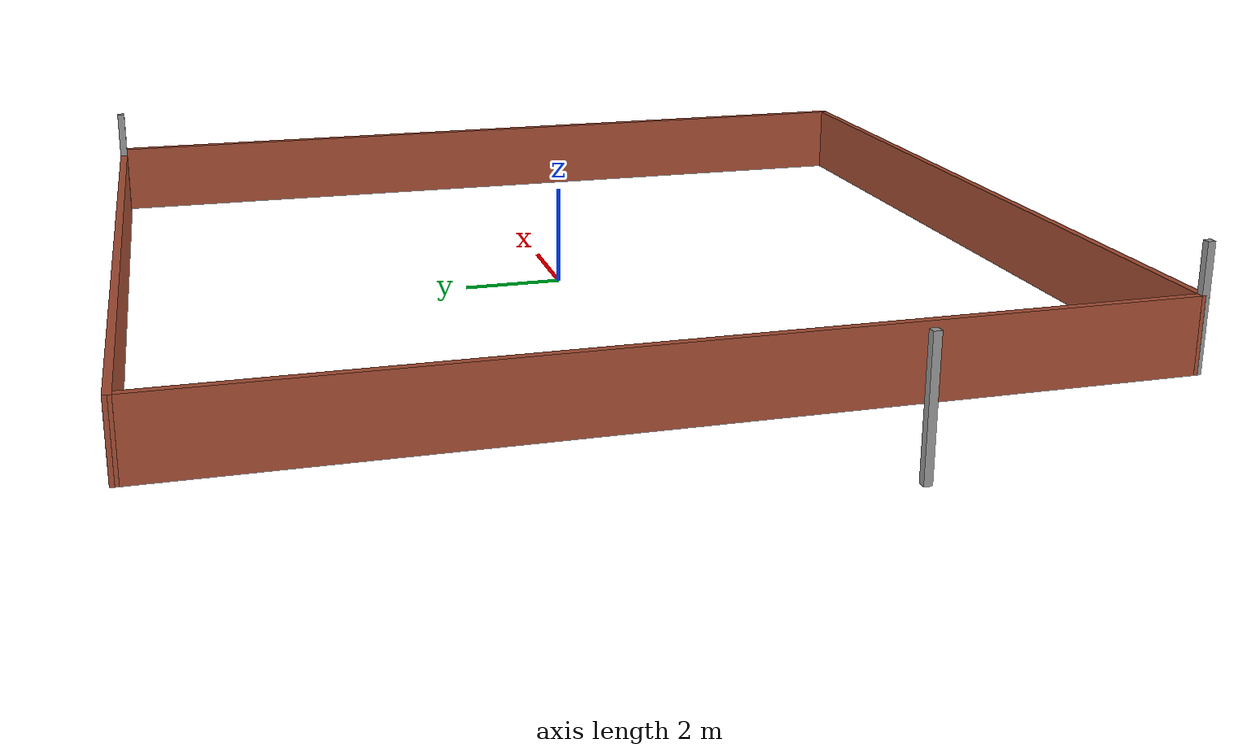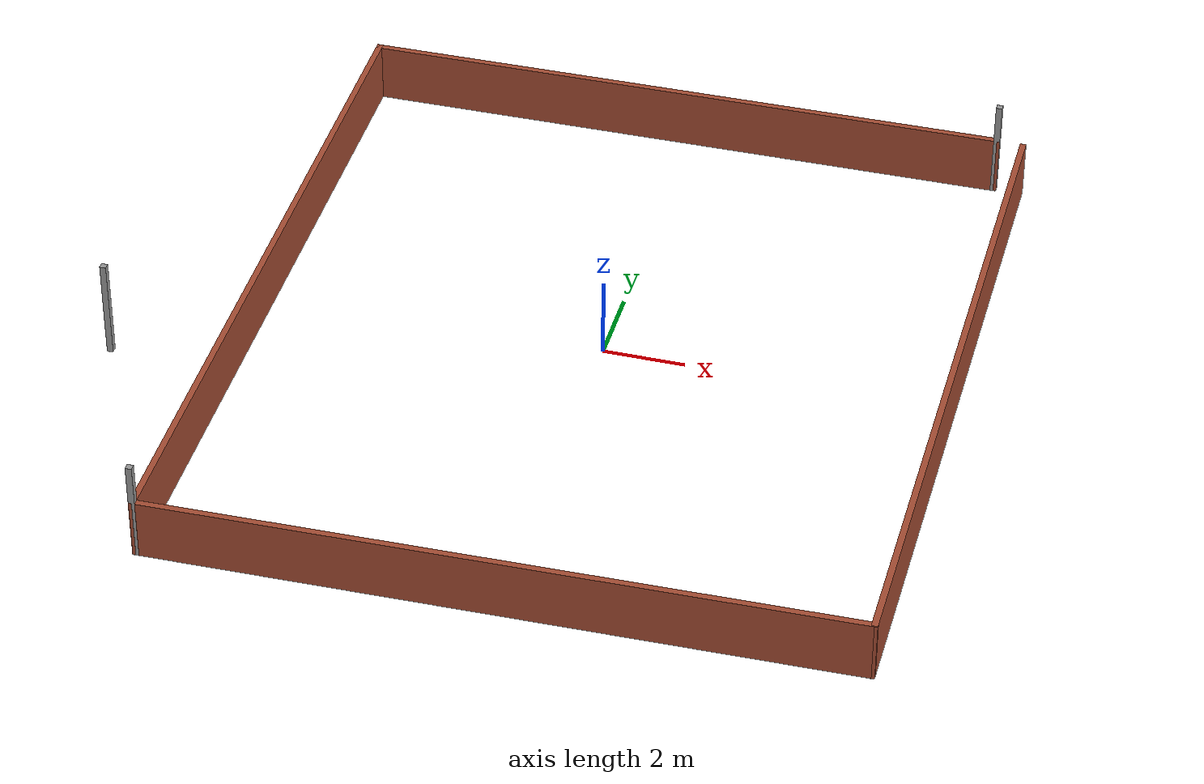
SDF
<?xml version='1.0'?>
<sdf version='1.6'>
  <model name='barriers'>
    <pose frame=''>-1.44668 -0.386415 0 0 -0 0</pose>
    <link name='Wall_12'>
      <collision name='Wall_12_Collision'>
        <geometry>
          <box>
            <size>18.8961 0.15 1.5</size>
          </box>
        </geometry>
        <pose frame=''>0 0 0.75 0 -0 0</pose>
      </collision>
      <visual name='Wall_12_Visual'>
        <pose frame=''>0 0 0.75 0 -0 0</pose>
        <geometry>
          <box>
            <size>18.8961 0.15 1.5</size>
          </box>
        </geometry>
        <material>
          <script>
            <uri>file://media/materials/scripts/gazebo.material</uri>
            <name>Gazebo/Bricks</name>
          </script>
          <ambient>1 1 1 1</ambient>
        </material>
        <meta>
          <layer>0</layer>
        </meta>
      </visual>
      <pose frame=''>-6.82382 0.000415 0 0 -0 -1.56765</pose>
    </link>
    <link name='Wall_13'>
      <collision name='Wall_13_Collision'>
        <geometry>
          <box>
            <size>0.15 0.15 2.5</size>
          </box>
        </geometry>
        <pose frame=''>0 0 1.25 0 -0 0</pose>
      </collision>
      <visual name='Wall_13_Visual'>
        <pose frame=''>0 0 1.25 0 -0 0</pose>
        <geometry>
          <box>
            <size>0.15 0.15 2.5</size>
          </box>
        </geometry>
        <material>
          <script>
            <uri>file://media/materials/scripts/gazebo.material</uri>
            <name>Gazebo/Grey</name>
          </script>
          <ambient>1 1 1 1</ambient>
        </material>
        <meta>
          <layer>0</layer>
        </meta>
      </visual>
      <pose frame=''>-6.79432 -9.37258 0 0 -0 0</pose>
    </link>
    <link name='Wall_16'>
      <collision name='Wall_16_Collision'>
        <geometry>
          <box>
            <size>16.25 0.15 1.5</size>
          </box>
        </geometry>
        <pose frame=''>0 0 0.75 0 -0 0</pose>
      </collision>
      <visual name='Wall_16_Visual'>
        <pose frame=''>0 0 0.75 0 -0 0</pose>
        <geometry>
          <box>
            <size>16.25 0.15 1.5</size>
          </box>
        </geometry>
        <material>
          <script>
            <uri>file://media/materials/scripts/gazebo.material</uri>
            <name>Gazebo/Bricks</name>
          </script>
          <ambient>1 1 1 1</ambient>
        </material>
        <meta>
          <layer>0</layer>
        </meta>
      </visual>
      <pose frame=''>1.19668 9.34292 0 0 -0 -0.003789</pose>
    </link>
    <link name='Wall_17'>
      <collision name='Wall_17_Collision'>
        <geometry>
          <box>
            <size>0.15 0.15 2.5</size>
          </box>
        </geometry>
        <pose frame=''>0 0 1.25 0 -0 0</pose>
      </collision>
      <visual name='Wall_17_Visual'>
        <pose frame=''>0 0 1.25 0 -0 0</pose>
        <geometry>
          <box>
            <size>0.15 0.15 2.5</size>
          </box>
        </geometry>
        <material>
          <script>
            <uri>file://media/materials/scripts/gazebo.material</uri>
            <name>Gazebo/Grey</name>
          </script>
          <ambient>1 1 1 1</ambient>
        </material>
        <meta>
          <layer>0</layer>
        </meta>
      </visual>
      <pose frame=''>9.24668 9.31241 0 0 -0 0</pose>
    </link>
    <link name='Wall_20'>
      <collision name='Wall_20_Collision'>
        <geometry>
          <box>
            <size>18.5 0.15 1.5</size>
          </box>
        </geometry>
        <pose frame=''>0 0 0.75 0 -0 0</pose>
      </collision>
      <visual name='Wall_20_Visual'>
        <pose frame=''>0 0 0.75 0 -0 0</pose>
        <geometry>
          <box>
            <size>18.5 0.15 1.5</size>
          </box>
        </geometry>
        <material>
          <script>
            <uri>file://media/materials/scripts/gazebo.material</uri>
            <name>Gazebo/Bricks</name>
          </script>
          <ambient>1 1 1 1</ambient>
        </material>
        <meta>
          <layer>0</layer>
        </meta>
      </visual>
      <pose frame=''>9.90568 0.052415 0 0 -0 -1.5708</pose>
    </link>
    <link name='Wall_21'>
      <collision name='Wall_21_Collision'>
        <geometry>
          <box>
            <size>16.8519 0.15 1.5</size>
          </box>
        </geometry>
        <pose frame=''>0 0 0.75 0 -0 0</pose>
      </collision>
      <visual name='Wall_21_Visual'>
        <pose frame=''>0 0 0.75 0 -0 0</pose>
        <geometry>
          <box>
            <size>16.8519 0.15 1.5</size>
          </box>
        </geometry>
        <material>
          <script>
            <uri>file://media/materials/scripts/gazebo.material</uri>
            <name>Gazebo/Bricks</name>
          </script>
          <ambient>1 1 1 1</ambient>
        </material>
        <meta>
          <layer>0</layer>
        </meta>
      </visual>
      <pose frame=''>1.55568 -9.24758 0 0 -0 -3.12662</pose>
    </link>
    <link name='Wall_22'>
      <collision name='Wall_22_Collision'>
        <geometry>
          <box>
            <size>0.15 0.15 2.5</size>
          </box>
        </geometry>
        <pose frame=''>0 0 1.25 0 -0 0</pose>
      </collision>
      <visual name='Wall_22_Visual'>
        <pose frame=''>0 0 1.25 0 -0 0</pose>
        <geometry>
          <box>
            <size>0.15 0.15 2.5</size>
          </box>
        </geometry>
        <material>
          <script>
            <uri>file://media/materials/scripts/gazebo.material</uri>
            <name>Gazebo/Grey</name>
          </script>
          <ambient>1 1 1 1</ambient>
        </material>
        <meta>
          <layer>0</layer>
        </meta>
      </visual>
      <pose frame=''>-6.79432 -9.37258 0 0 -0 0</pose>
    </link>
    <link name='Wall_9'>
      <collision name='Wall_9_Collision'>
        <geometry>
          <box>
            <size>0.15 0.15 2.5</size>
          </box>
        </geometry>
        <pose frame=''>0 0 1.25 0 -0 0</pose>
      </collision>
      <visual name='Wall_9_Visual'>
        <pose frame=''>0 0 1.25 0 -0 0</pose>
        <geometry>
          <box>
            <size>0.15 0.15 2.5</size>
          </box>
        </geometry>
        <material>
          <script>
            <uri>file://media/materials/scripts/gazebo.material</uri>
            <name>Gazebo/Grey</name>
          </script>
          <ambient>1 1 1 1</ambient>
        </material>
        <meta>
          <layer>0</layer>
        </meta>
      </visual>
      <pose frame=''>-9.9068 -2.57035 0 0 -0 0</pose>
    </link>
    <static>1</static>
  </model>
</sdf>
